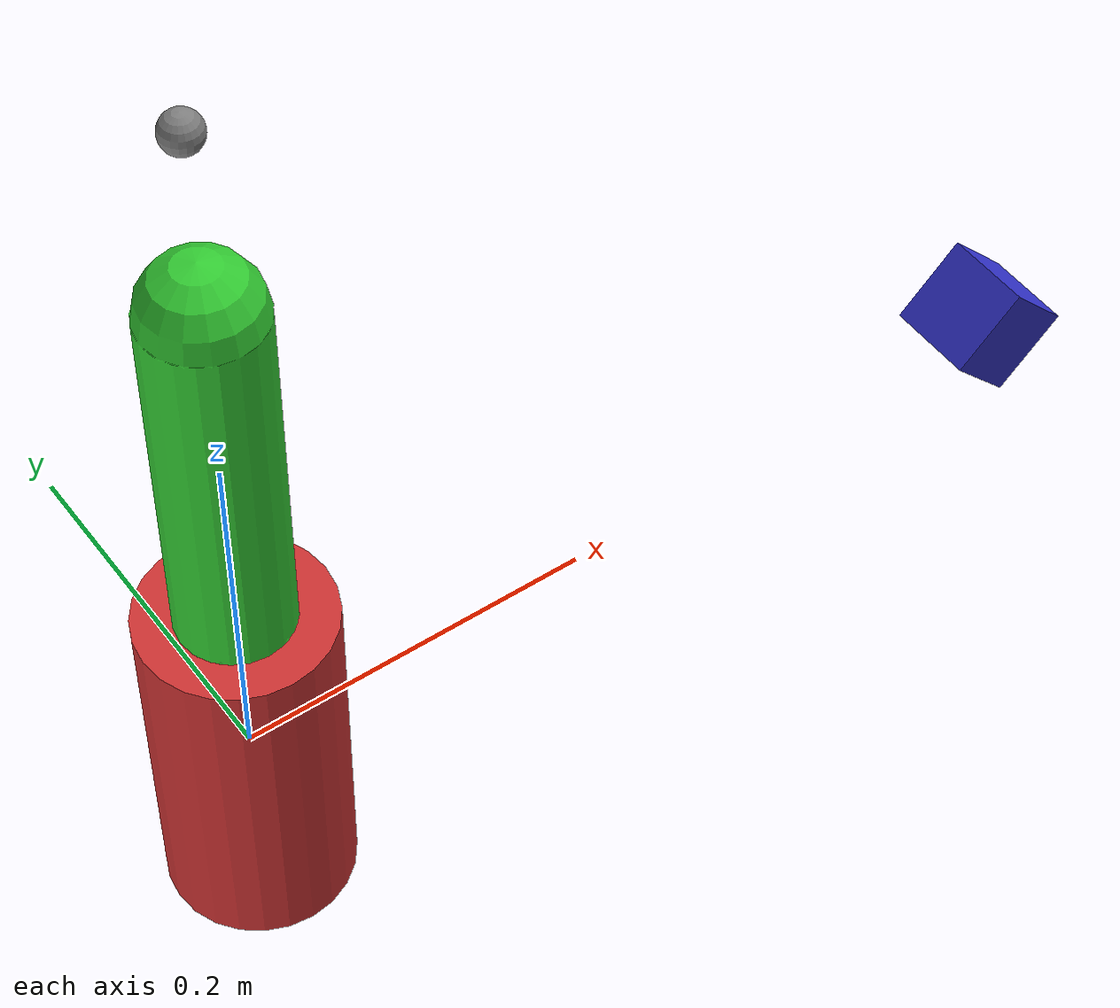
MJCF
<mujoco model="minimal_test">
  <compiler angle="radian"/>
  <option timestep="0.002" solver="Newton" iterations="20"/>

  <worldbody>
    <body name="link1" pos="0 0 0">
      <joint name="j1" type="hinge" axis="0 0 1" range="-3.14 3.14"/>
      <inertial pos="0 0 0.1" mass="1.0" diaginertia="0.01 0.01 0.01"/>
      <geom type="cylinder" size="0.05 0.1" rgba="0.8 0.2 0.2 1"/>

      <body name="link2" pos="0 0 0.2">
        <joint name="j2" type="hinge" axis="0 1 0" range="-1.57 1.57"/>
        <inertial pos="0 0 0.1" mass="0.5" diaginertia="0.005 0.005 0.005"/>
        <geom type="capsule" size="0.03 0.1" rgba="0.2 0.8 0.2 1"/>
        <site name="ee_site" pos="0 0 0.2" size="0.01"/>
      </body>
    </body>

    <body name="probe_link" pos="0.3 -0.15 0.25" quat="0.9238795325 0 0.3826834324 0">
      <inertial pos="0.07 0.02 -0.04" mass="0.25" diaginertia="0.001 0.001 0.001"/>
      <geom type="box" size="0.02 0.02 0.02" rgba="0.2 0.2 0.8 1"/>
    </body>
  </worldbody>

  <actuator>
    <position name="m1" joint="j1" kp="100" ctrlrange="-3.14 3.14"/>
    <position name="m2" joint="j2" kp="100" ctrlrange="-1.57 1.57"/>
  </actuator>

  <sensor>
    <jointpos name="j1_pos" joint="j1"/>
    <force name="ee_force" site="ee_site"/>
  </sensor>
</mujoco>
